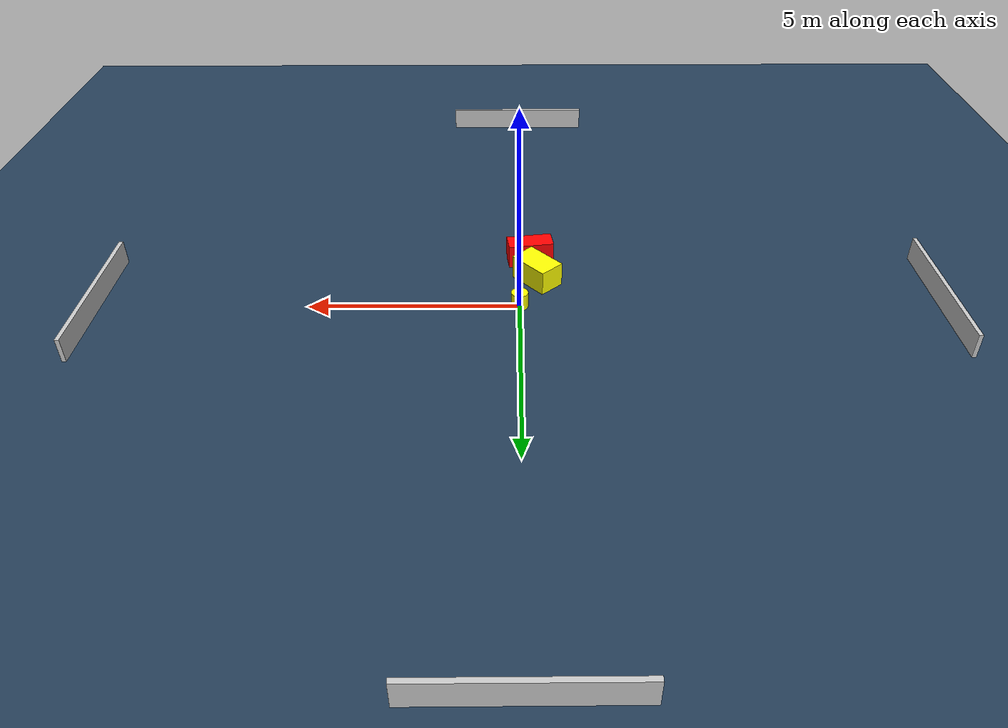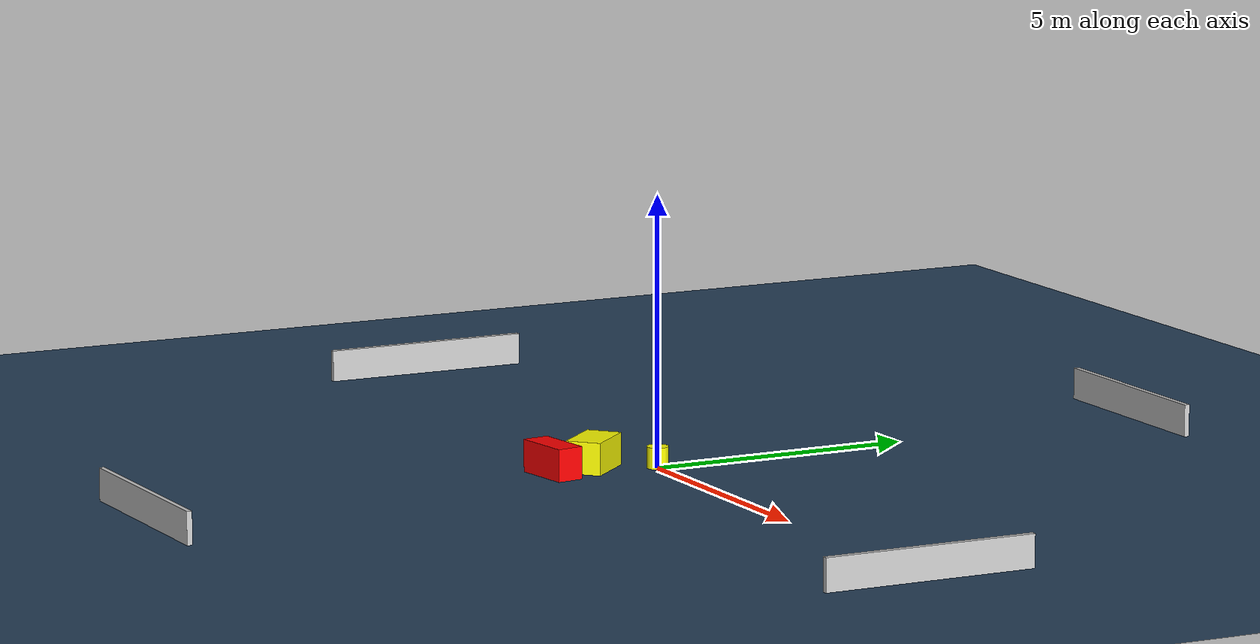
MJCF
<?xml version="1.0" ?>
<mujoco model="generated_environment">
  <option timestep="0.01" integrator="RK4" cone="elliptic"/>
  <default>
    <geom density="1"/>
  </default>
  <asset>
    <texture builtin="gradient" height="3072" name="skybox" rgb1="0.3 0.5 0.7" rgb2="0 0 0" type="skybox" width="512"/>
    <texture builtin="checker" height="300" name="groundplane" rgb1="0.2 0.3 0.4" rgb2="0.1 0.2 0.3" type="2d" width="300"/>
    <material name="groundplane" reflectance="0.2" texrepeat="5 5" texture="groundplane"/>
  </asset>
  <worldbody>
    <light dir="0 0 -1" directional="true" pos="0 0 1.5"/>
    <geom condim="3" friction="0.5 0.005 0.001" material="groundplane" name="floor" pos="0 0 0" size="0 0 0.05" type="plane"/>
    <body name="walls">
      <geom name="wall_1" condim="4" pos="-10.0 0.0 0.3" rgba="0.800000011920929 0.800000011920929 0.800000011920929 1.0" size="0.05 2.0 0.3" type="box"/>
      <geom name="wall_2" condim="4" pos="10.0 0.0 0.3" rgba="0.800000011920929 0.800000011920929 0.800000011920929 1.0" size="0.05 2.0 0.3" type="box"/>
      <geom name="wall_3" condim="4" pos="0.0 -10.0 0.3" rgba="0.800000011920929 0.800000011920929 0.800000011920929 1.0" size="2.0 0.05 0.3" type="box"/>
      <geom name="wall_4" condim="4" pos="0.0 10.0 0.3" rgba="0.800000011920929 0.800000011920929 0.800000011920929 1.0" size="2.0 0.05 0.3" type="box"/>
    </body>
    <body name="robot">
      <joint name="joint_x" type="slide" pos="0 0 0" axis="1 0 0"/>
      <joint name="joint_y" type="slide" pos="0 0 0" axis="0 1 0"/>
      <geom name="robot" type="cylinder" pos="0.0 0.0 0.2" size="0.2 0.2 0.0" mass="5.0" friction="1.0 0.005 0.0001" condim="4" rgba="1.0 1.0 0.0 1.0"/>
    </body>
    <body name="obstacle_1_movable">
      <geom name="obstacle_1_movable" condim="4" pos="-0.4312921312708801 -1.0791466704023915 0.3" euler="0 0 312.50874724799115" friction="0.0 0.005 0.001" rgba="1.0 1.0 0.0 1.0" size="0.5312733012606187 0.3287807987102377 0.3" type="box" mass="0.1"/>
      <joint type="free"/>
    </body>
    <body name="obstacle_2_static">
      <geom name="obstacle_2_static" condim="4" pos="-0.27347801006526445 -1.9808932087801248 0.3" euler="0 0 98.06953740721048" friction="0.0 0.005 0.001" rgba="1.0 0.0 0.0 1.0" size="0.2513766727356694 0.5626686817767277 0.3" type="box"/>
    </body>
  </worldbody>
  <actuator>
    <motor name="actuator_x" joint="joint_x" gear="1" ctrlrange="-1 1"/>
    <motor name="actuator_y" joint="joint_y" gear="1" ctrlrange="-1 1"/>
  </actuator>
</mujoco>
